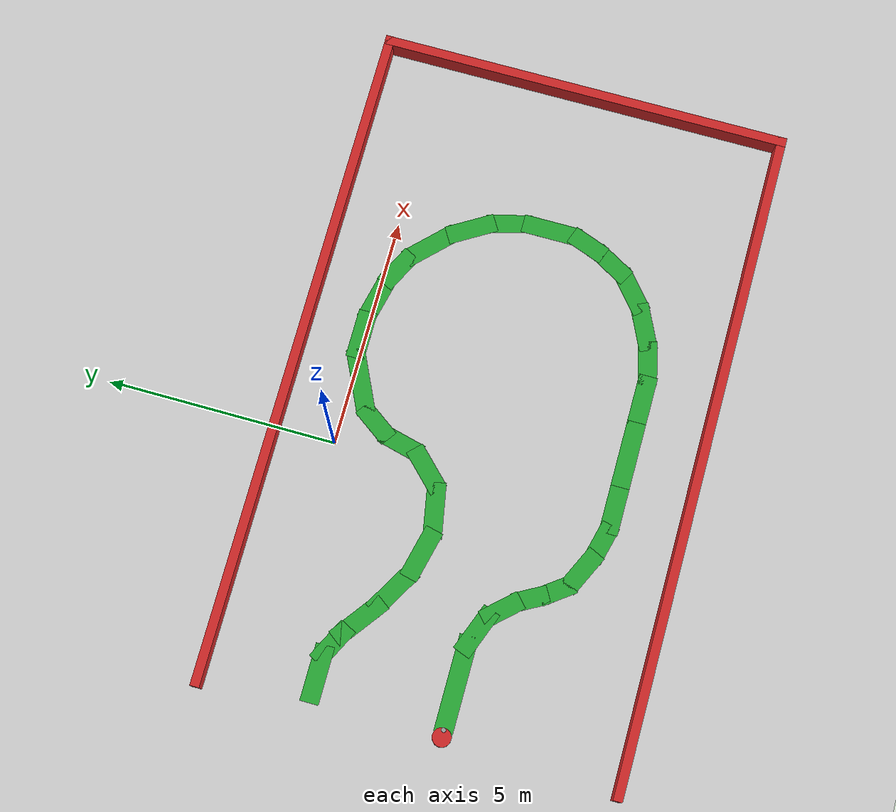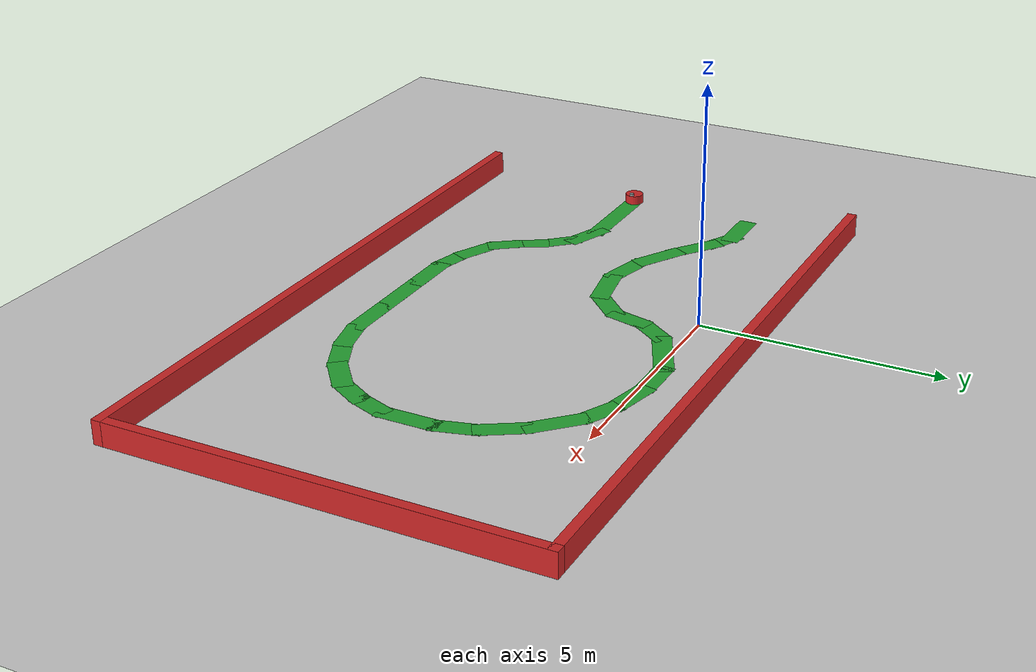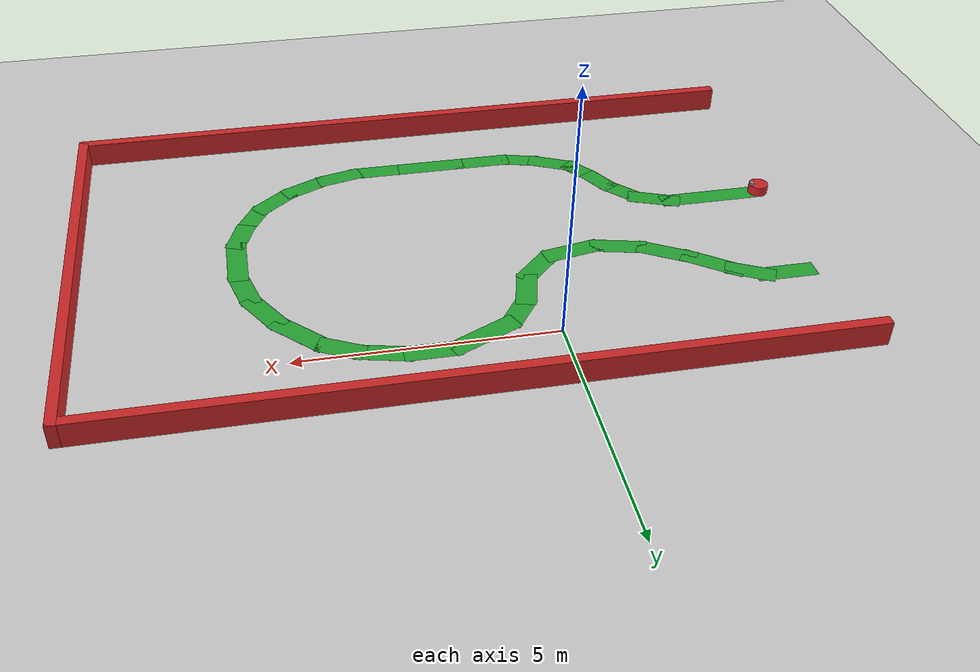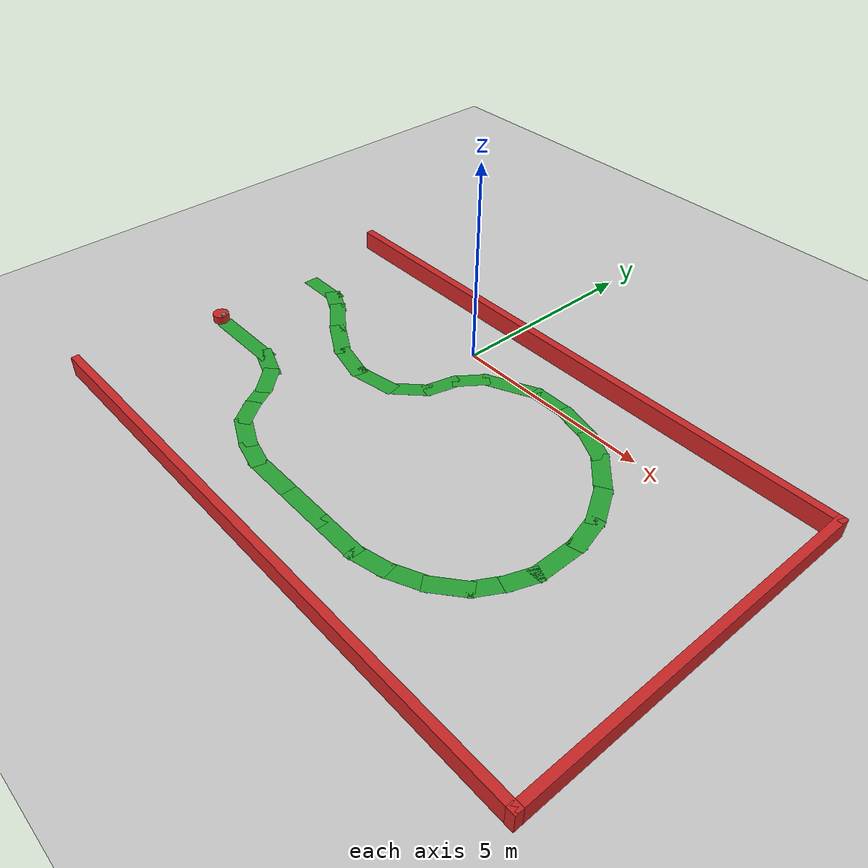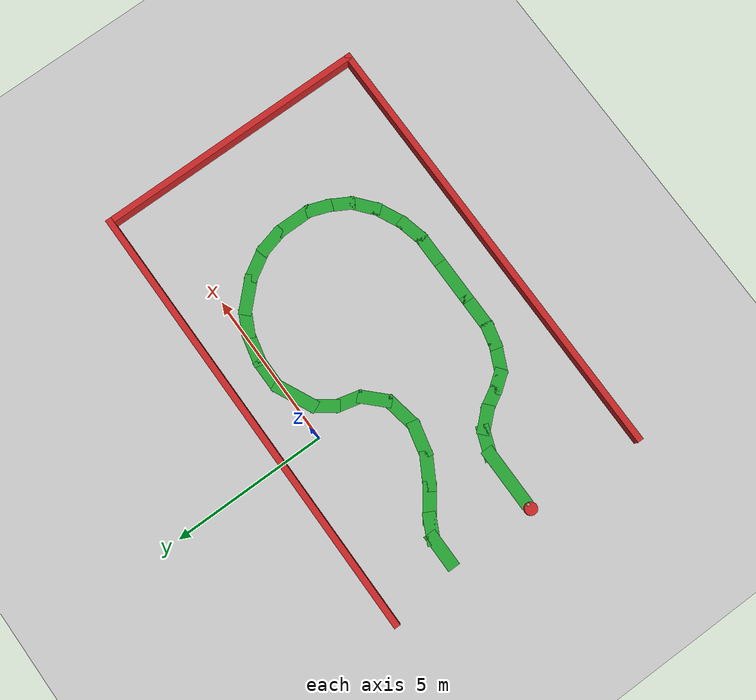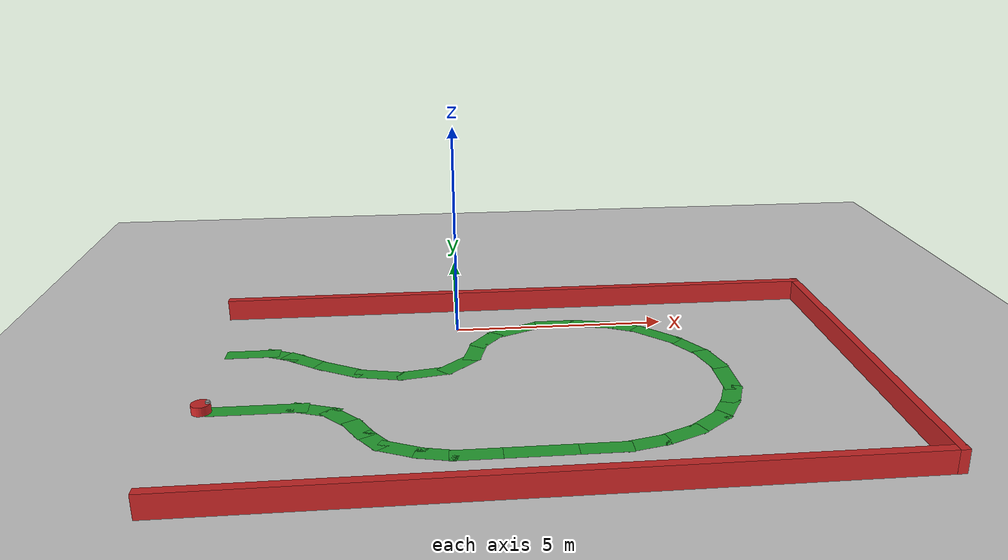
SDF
<?xml version="1.0"?>
<sdf version="1.4">
  <world name="default">
    <!-- World Camera -->
    <gui>
        <camera name='camera_view'>
        <pose>-12 0 3 0 0.2 0</pose>
        </camera>
    </gui>
    <!-- Ground -->
    <include>
      <uri>model://ground_plane</uri>
    </include>

    <!-- Global light source -->
     <include>
      <uri>model://sun</uri>
    </include>

    <!-- Robot model -->
    <include>
      <pose>-5.3 -3.8 0 0 0 0</pose>
      <uri>model://DAC_Bug</uri>
    </include>

    <!-- Wall -->
    <include>
        <uri>model://lineFollow</uri>
    </include>

  </world>
</sdf>
